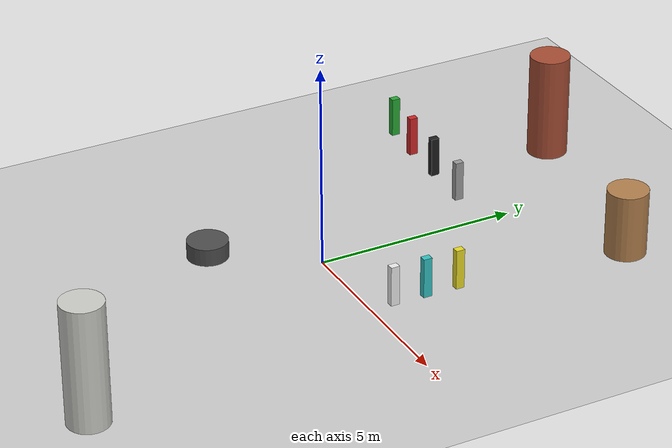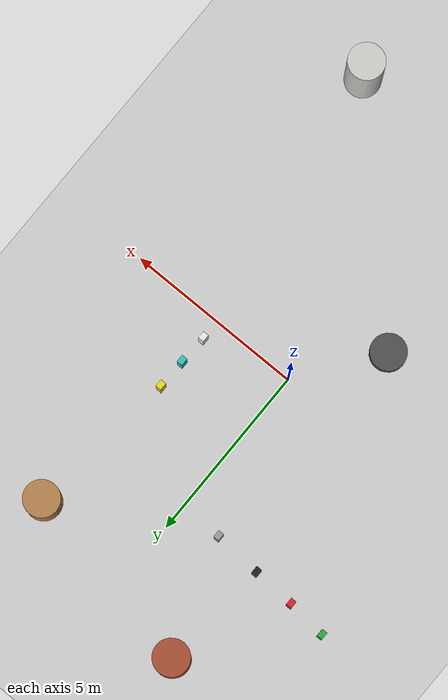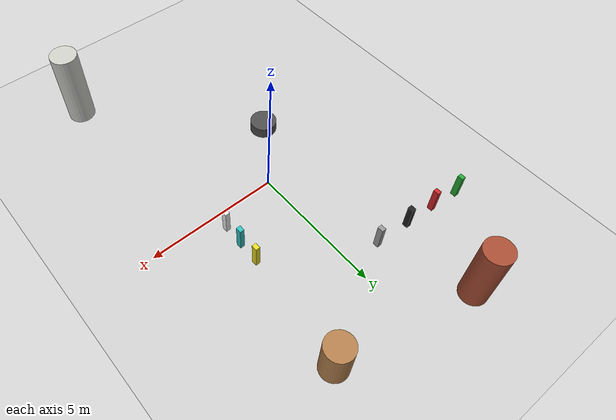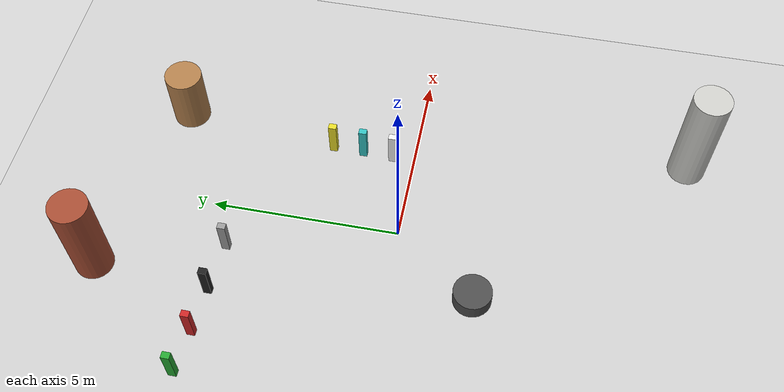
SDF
<sdf version="1.6">
 <world name="default">
  <light name="sun" type="directional">
   <pose>0 0 10 0 -0 0</pose>
   <diffuse>0.8 0.8 0.8 1</diffuse>
   <specular>0.2 0.2 0.2 1</specular>
   <attenuation>
    <range>1000</range>
    <constant>0.9</constant>
    <linear>0.01</linear>
    <quadratic>0.001</quadratic>
   </attenuation>
   <direction>-0.5 0.1 -0.9</direction>
  </light>
  <model name="ground_plane">
   <static>1</static>
   <link name="link">
    <collision name="collision">
     <geometry><plane><normal>0 0 1</normal><size>100 100</size></plane></geometry>
     <surface>
      <contact><collide_bitmask>65535</collide_bitmask></contact>
      <friction><ode><mu>100</mu><mu2>50</mu2></ode></friction>
     </surface>
    </collision>
    <visual name="visual">
     <cast_shadows>0</cast_shadows>
     <geometry><plane><normal>0 0 1</normal><size>100 100</size></plane></geometry>
     <material>
      <script><uri>file://media/materials/scripts/gazebo.material</uri><name>Gazebo/Grey</name></script>
     </material>
    </visual>
   </link>
  </model>
  <gravity>0 0 -9.8</gravity>
  <magnetic_field>6e-06 2.3e-05 -4.2e-05</magnetic_field>
  <atmosphere type="adiabatic"/>
  <physics name="default_physics" default="0" type="ode">
   <max_step_size>0.001</max_step_size>
   <real_time_factor>1</real_time_factor>
   <real_time_update_rate>1000</real_time_update_rate>
  </physics>
  <scene><ambient>0.4 0.4 0.4 1</ambient><background>0.7 0.7 0.7 1</background><shadows>1</shadows></scene>
  <spherical_coordinates>
   <surface_model>EARTH_WGS84</surface_model>
   <latitude_deg>0</latitude_deg>
   <longitude_deg>0</longitude_deg>
   <elevation>0</elevation>
   <heading_deg>0</heading_deg>
  </spherical_coordinates>
  <model name="unit_cylinder">
   <pose>2.86205 6.50145 0.832578 0 0 -4e-06</pose>
   <link name="link">
    <inertial>
     <mass>1</mass>
     <inertia><ixx>0.145833</ixx><ixy>0</ixy><ixz>0</ixz><iyy>0.145833</iyy><iyz>0</iyz><izz>0.125</izz></inertia>
    </inertial>
    <collision name="collision">
     <geometry><cylinder><radius>0.5</radius><length>1.66517</length></cylinder></geometry>
    </collision>
    <visual name="visual">
     <geometry><cylinder><radius>0.5</radius><length>1.66517</length></cylinder></geometry>
     <material>
      <script><name>Gazebo/Wood</name><uri>file://media/materials/scripts/gazebo.material</uri></script>
     </material>
    </visual>
   </link>
  </model>
  <model name="unit_cylinder_clone">
   <pose>-2.31139 7.51855 1.31964 -0 -0 -1.4e-05</pose>
   <link name="link">
    <inertial>
     <mass>1</mass>
     <inertia><ixx>0.145833</ixx><ixy>0</ixy><ixz>0</ixz><iyy>0.145833</iyy><iyz>0</iyz><izz>0.125</izz></inertia>
    </inertial>
    <collision name="collision">
     <geometry><cylinder><radius>0.5</radius><length>2.63928</length></cylinder></geometry>
    </collision>
    <visual name="visual">
     <geometry><cylinder><radius>0.5</radius><length>2.63928</length></cylinder></geometry>
     <material>
      <script><name>Gazebo/Bricks</name><uri>file://media/materials/scripts/gazebo.material</uri></script>
     </material>
    </visual>
   </link>
  </model>
  <model name="unit_cylinder_clone_0">
   <pose>3.52464 -7.35547 1.48836 0 -0 9e-06</pose>
   <link name="link">
    <inertial>
     <mass>1</mass>
     <inertia><ixx>0.145833</ixx><ixy>0</ixy><ixz>0</ixz><iyy>0.145833</iyy><iyz>0</iyz><izz>0.125</izz></inertia>
    </inertial>
    <collision name="collision">
     <geometry><cylinder><radius>0.5</radius><length>2.97674</length></cylinder></geometry>
    </collision>
    <visual name="visual">
     <geometry><cylinder><radius>0.5</radius><length>2.97674</length></cylinder></geometry>
     <material>
      <script><name>Gazebo/CeilingTiled</name><uri>file://media/materials/scripts/gazebo.material</uri></script>
     </material>
    </visual>
   </link>
  </model>
  <model name="unit_cylinder_clone_1">
   <pose>-1.56438 -2.19646 0.213619 0 -0 1e-06</pose>
   <link name="link">
    <inertial>
     <mass>1</mass>
     <inertia><ixx>0.145833</ixx><ixy>0</ixy><ixz>0</ixz><iyy>0.145833</iyy><iyz>0</iyz><izz>0.125</izz></inertia>
    </inertial>
    <collision name="collision">
     <geometry><cylinder><radius>0.5</radius><length>0.427239</length></cylinder></geometry>
    </collision>
    <visual name="visual">
     <geometry><cylinder><radius>0.5</radius><length>0.427239</length></cylinder></geometry>
     <material>
      <script><name>Gazebo/Road</name><uri>file://media/materials/scripts/gazebo.material</uri></script>
     </material>
    </visual>
   </link>
  </model>
  <model name="unit_box">
   <pose>-1.21469 4.31462 0.5 0 -1e-06 0.000101</pose>
   <link name="link">
    <inertial>
     <mass>1</mass>
     <inertia>
      <ixx>0.166667</ixx>
      <ixy>0</ixy>
      <ixz>0</ixz>
      <iyy>0.166667</iyy>
      <iyz>0</iyz>
      <izz>0.166667</izz>
     </inertia>
    </inertial>
    <collision name="collision"><geometry><box><size>0.167364 0.213191 1</size></box></geometry></collision>
    <visual name="visual">
     <geometry><box><size>0.167364 0.213191 1</size></box></geometry>
     <material>
      <script><name>Gazebo/Grey</name><uri>file://media/materials/scripts/gazebo.material</uri></script>
     </material>
    </visual>
   </link>
  </model>
  <model name="unit_box_clone">
   <pose>-2.55976 4.40287 0.5 -7e-06 -3e-06 0.00016</pose>
   <link name="link">
    <inertial>
     <mass>1</mass>
     <inertia>
      <ixx>0.166667</ixx>
      <ixy>0</ixy>
      <ixz>0</ixz>
      <iyy>0.166667</iyy>
      <iyz>0</iyz>
      <izz>0.166667</izz>
     </inertia>
    </inertial>
    <collision name="collision"><geometry><box><size>0.167364 0.213191 1</size></box></geometry></collision>
    <visual name="visual">
     <geometry><box><size>0.167364 0.213191 1</size></box></geometry>
     <material>
      <script><name>Gazebo/Black</name><uri>file://media/materials/scripts/gazebo.material</uri></script>
     </material>
    </visual>
   </link>
  </model>
  <model name="unit_box_clone_0">
   <pose>-3.76341 4.4662 0.500001 5e-06 1.4e-05 0.000194</pose>
   <link name="link">
    <inertial>
     <mass>1</mass>
     <inertia>
      <ixx>0.166667</ixx>
      <ixy>0</ixy>
      <ixz>0</ixz>
      <iyy>0.166667</iyy>
      <iyz>0</iyz>
      <izz>0.166667</izz>
     </inertia>
    </inertial>
    <collision name="collision"><geometry><box><size>0.167364 0.213191 1</size></box></geometry></collision>
    <visual name="visual">
     <geometry><box><size>0.167364 0.213191 1</size></box></geometry>
     <material>
      <script><name>Gazebo/Red</name><uri>file://media/materials/scripts/gazebo.material</uri></script>
     </material>
    </visual>
   </link>
  </model>
  <model name="unit_box_clone_1">
   <pose>-4.88789 4.57705 0.5 0 -5e-06 1e-05</pose>
   <link name="link">
    <inertial>
     <mass>1</mass>
     <inertia>
      <ixx>0.166667</ixx>
      <ixy>0</ixy>
      <ixz>0</ixz>
      <iyy>0.166667</iyy>
      <iyz>0</iyz>
      <izz>0.166667</izz>
     </inertia>
    </inertial>
    <collision name="collision"><geometry><box><size>0.167364 0.213191 1</size></box></geometry></collision>
    <visual name="visual">
     <geometry><box><size>0.167364 0.213191 1</size></box></geometry>
     <material>
      <script><name>Gazebo/Green</name><uri>file://media/materials/scripts/gazebo.material</uri></script>
     </material>
    </visual>
   </link>
  </model>
  <model name="unit_box_clone_2">
   <pose>2.41323 2.2648 0.5 2e-06 1e-06 6.3e-05</pose>
   <link name="link">
    <inertial>
     <mass>1</mass>
     <inertia>
      <ixx>0.166667</ixx>
      <ixy>0</ixy>
      <ixz>0</ixz>
      <iyy>0.166667</iyy>
      <iyz>0</iyz>
      <izz>0.166667</izz>
     </inertia>
    </inertial>
    <collision name="collision"><geometry><box><size>0.167364 0.213191 1</size></box></geometry></collision>
    <visual name="visual">
     <geometry><box><size>0.167364 0.213191 1</size></box></geometry>
     <material>
      <script><name>Gazebo/Yellow</name><uri>file://media/materials/scripts/gazebo.material</uri></script>
     </material>
    </visual>
   </link>
  </model>
  <model name="unit_box_clone_3">
   <pose>2.39739 1.42541 0.5 3e-06 -0 7.6e-05</pose>
   <link name="link">
    <inertial>
     <mass>1</mass>
     <inertia>
      <ixx>0.166667</ixx>
      <ixy>0</ixy>
      <ixz>0</ixz>
      <iyy>0.166667</iyy>
      <iyz>0</iyz>
      <izz>0.166667</izz>
     </inertia>
    </inertial>
    <collision name="collision"><geometry><box><size>0.167364 0.213191 1</size></box></geometry></collision>
    <visual name="visual">
     <geometry><box><size>0.167364 0.213191 1</size></box></geometry>
     <material>
      <script><name>Gazebo/Turquoise</name><uri>file://media/materials/scripts/gazebo.material</uri></script>
     </material>
    </visual>
   </link>
  </model>
  <model name="unit_box_clone_4">
   <pose>2.36572 0.601841 0.500001 -6e-06 3e-06 6.5e-05</pose>
   <link name="link">
    <inertial>
     <mass>1</mass>
     <inertia>
      <ixx>0.166667</ixx>
      <ixy>0</ixy>
      <ixz>0</ixz>
      <iyy>0.166667</iyy>
      <iyz>0</iyz>
      <izz>0.166667</izz>
     </inertia>
    </inertial>
    <collision name="collision"><geometry><box><size>0.167364 0.213191 1</size></box></geometry></collision>
    <visual name="visual">
     <geometry><box><size>0.167364 0.213191 1</size></box></geometry>
     <material>
      <script><name>Gazebo/White</name><uri>file://media/materials/scripts/gazebo.material</uri></script>
     </material>
    </visual>
   </link>
  </model>
 </world>
</sdf>
